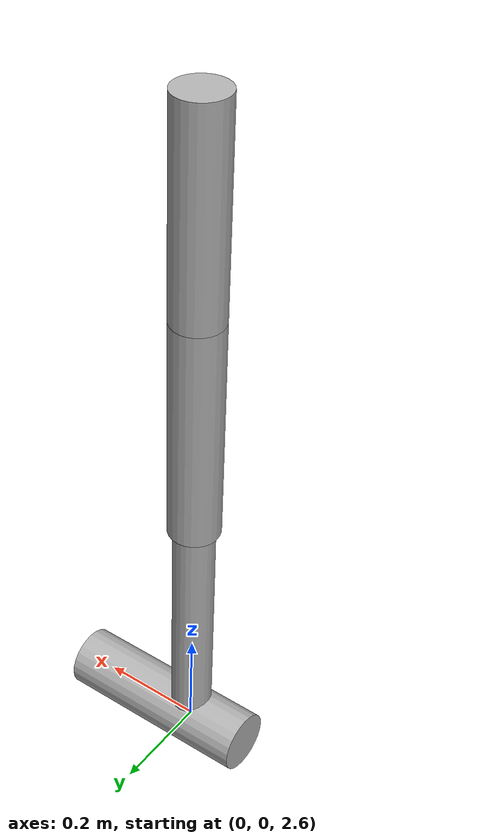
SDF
<?xml version="1.0" ?>
<sdf version="1.8">
  <world name="hopper">
    <physics name="10ms" type="ignored">
      <max_step_size>0.01</max_step_size>
      <real_time_update_rate>0</real_time_update_rate>
    </physics>
    <plugin filename="gz-sim-physics-system"           name="gz::sim::systems::Physics"/>
    <plugin filename="gz-sim-contact-system"           name="gz::sim::systems::Contact"/>
    <plugin filename="gz-sim-sensors-system"           name="gz::sim::systems::Sensors">
      <render_engine>ogre2</render_engine>
    </plugin>
    <plugin filename="gz-sim-scene-broadcaster-system" name="gz::sim::systems::SceneBroadcaster"/>
    <plugin filename="gz-sim-user-commands-system"     name="gz::sim::systems::UserCommands"/>

    <plugin
      filename="gz-sim-python-system-loader-system"
      name="gz::sim::systems::PythonSystemLoader">
      <module_name>hopper_learner</module_name>
      <agent_name>hopper</agent_name>
      <frame_skip>5</frame_skip>
    </plugin>

    <light name="sun" type="directional">
      <cast_shadows>true</cast_shadows>
      <pose>0 0 10 0 0 0</pose>
      <diffuse>0.8 0.8 0.8 1</diffuse>
      <specular>0.2 0.2 0.2 1</specular>
      <direction>-0.5 0.1 -0.9</direction>
    </light>

    <model name="ground_plane">
      <static>true</static>
      <link name="link">
        <collision name="collision">
          <geometry><plane><normal>0 0 1</normal><size>100 100</size></plane></geometry>
        </collision>
        <visual name="visual">
          <geometry><plane><normal>0 0 1</normal><size>100 100</size></plane></geometry>
          <material>
            <ambient>0.8 0.8 0.8 1</ambient>
            <diffuse>0.8 0.8 0.8 1</diffuse>
            <specular>0.8 0.8 0.8 1</specular>
          </material>
        </visual>
      </link>
    </model>

    <model name="hopper">
      <pose>0 0 1.25 0 0 0</pose>
      <include merge="true">
        <uri>package://gazebo_gymnasium_resources/models/hopper</uri>
      </include>
    </model>
  </world>
</sdf>

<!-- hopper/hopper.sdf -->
<sdf version='1.11'>
  <model name='hopper'>
    <link name='link1_1'>
      <inertial>
        <pose>0 0 0 0 0 0</pose>
        <mass>1.9999999999999999e-06</mass>
        <inertia>
          <ixx>2.0000000000000001e-09</ixx>
          <ixy>0</ixy>
          <ixz>0</ixz>
          <iyy>2.0000000000000001e-09</iyy>
          <iyz>0</iyz>
          <izz>2.0000000000000001e-09</izz>
        </inertia>
      </inertial>
    </link>
    <joint name='rootx' type='prismatic'>
      <pose relative_to='link1_1'>0 0 0 0 0 0</pose>
      <parent>link1_1</parent>
      <child>link1_2</child>
      <axis>
        <xyz>1 0 0</xyz>
        <limit>
          <lower>0</lower>
          <upper>1</upper>
          <effort>0</effort>
          <velocity>0</velocity>
        </limit>
        <dynamics>
          <damping>1</damping>
          <friction>0.0001</friction>
          <spring_reference>0</spring_reference>
          <spring_stiffness>0</spring_stiffness>
        </dynamics>
      </axis>
    </joint>
    <link name='link1_2'>
      <pose relative_to='rootx'>0 0 0 0 0 0</pose>
      <inertial>
        <pose>0 0 0 0 0 0</pose>
        <mass>9.9999999999999995e-07</mass>
        <inertia>
          <ixx>1.0000000000000001e-09</ixx>
          <ixy>0</ixy>
          <ixz>0</ixz>
          <iyy>1.0000000000000001e-09</iyy>
          <iyz>0</iyz>
          <izz>1.0000000000000001e-09</izz>
        </inertia>
      </inertial>
    </link>
    <joint name='rootz' type='prismatic'>
      <pose relative_to='link1_2'>0 0 0 0 0 0</pose>
      <parent>link1_2</parent>
      <child>link1_3</child>
      <axis>
        <xyz>0 0 1</xyz>
        <limit>
          <lower>0</lower>
          <upper>1</upper>
          <effort>0</effort>
          <velocity>0</velocity>
        </limit>
        <dynamics>
          <damping>1</damping>
          <friction>0.0001</friction>
          <spring_reference>0</spring_reference>
          <spring_stiffness>0</spring_stiffness>
        </dynamics>
      </axis>
    </joint>
    <link name='link1_3'>
      <pose relative_to='rootz'>0 0 0 0 0 0</pose>
      <inertial>
        <pose>0 0 0 0 0 0</pose>
        <mass>9.9999999999999995e-07</mass>
        <inertia>
          <ixx>1.0000000000000001e-09</ixx>
          <ixy>0</ixy>
          <ixz>0</ixz>
          <iyy>1.0000000000000001e-09</iyy>
          <iyz>0</iyz>
          <izz>1.0000000000000001e-09</izz>
        </inertia>
      </inertial>
    </link>
    <joint name='rooty' type='revolute'>
      <pose relative_to='link1_3'>0 0 1.25 0 0 0</pose>
      <parent>link1_3</parent>
      <child>link1_4</child>
      <axis>
        <xyz>0 1 0</xyz>
        <limit>
          <lower>-inf</lower>
          <upper>inf</upper>
        </limit>
        <dynamics>
          <damping>1</damping>
          <friction>0.0001</friction>
          <spring_reference>0</spring_reference>
          <spring_stiffness>0</spring_stiffness>
        </dynamics>
      </axis>
    </joint>
    <link name='link1_4'>
      <pose relative_to='rooty'>0 0 0 0 0 0</pose>
      <inertial>
        <pose>0 0 1.2499996589536531 0 0 0</pose>
        <mass>3.6651910000000001</mass>
        <inertia>
          <ixx>0.079411563499575344</ixx>
          <ixy>0</ixy>
          <ixz>0</ixz>
          <iyy>0.079411563499575344</iyy>
          <iyz>0</iyz>
          <izz>0.0061100010000000003</izz>
        </inertia>
      </inertial>
      <collision name='link1_4_fixed_joint_lump__torso_collision'>
        <pose>0 0 1.25 0 0 0</pose>
        <geometry>
          <cylinder>
            <length>0.40000000000000002</length>
            <radius>0.050000000000000003</radius>
          </cylinder>
        </geometry>
      </collision>
      <visual name='link1_4_fixed_joint_lump__torso_visual'>
        <pose>0 0 1.25 0 0 0</pose>
        <geometry>
          <cylinder>
            <length>0.40000000000000002</length>
            <radius>0.050000000000000003</radius>
          </cylinder>
        </geometry>
              <material>
          <ambient>0.5 0.5 0.5 1</ambient>
          <diffuse>0.7 0.7 0.7 1</diffuse>
          <specular>0.1 0.1 0.1 1</specular>
        </material>
      </visual>
    </link>
    <joint name='thigh_joint' type='revolute'>
      <pose relative_to='link1_4'>0 0 1.05 0 0 0</pose>
      <parent>link1_4</parent>
      <child>link1_6</child>
      <axis>
        <xyz>0 -1 0</xyz>
        <limit>
          <lower>-2.6179899999999998</lower>
          <upper>0</upper>
          <effort>0</effort>
          <velocity>0</velocity>
        </limit>
        <dynamics>
          <damping>1</damping>
          <friction>0.0001</friction>
          <spring_reference>0</spring_reference>
          <spring_stiffness>0</spring_stiffness>
        </dynamics>
      </axis>
    </joint>
    <link name='link1_6'>
      <pose relative_to='thigh_joint'>0 0 0 0 0 0</pose>
      <inertial>
        <pose>0 0 0 0 0 0</pose>
        <mass>4.0578910000000006</mass>
        <inertia>
          <ixx>0.105670001</ixx>
          <ixy>0</ixy>
          <ixz>0</ixz>
          <iyy>0.105670001</iyy>
          <iyz>0</iyz>
          <izz>0.0067600010000000007</izz>
        </inertia>
      </inertial>
      <collision name='link1_6_fixed_joint_lump__thigh_collision'>
        <pose>0 0 -0.22500000000000001 0 0 0</pose>
        <geometry>
          <cylinder>
            <length>0.45000000000000001</length>
            <radius>0.050000000000000003</radius>
          </cylinder>
        </geometry>
      </collision>
      <visual name='link1_6_fixed_joint_lump__thigh_visual'>
        <pose>0 0 -0.22500000000000001 0 0 0</pose>
        <geometry>
          <cylinder>
            <length>0.45000000000000001</length>
            <radius>0.050000000000000003</radius>
          </cylinder>
        </geometry>
              <material>
          <ambient>0.5 0.5 0.5 1</ambient>
          <diffuse>0.7 0.7 0.7 1</diffuse>
          <specular>0.1 0.1 0.1 1</specular>
        </material>
      </visual>
    </link>
    <joint name='leg_joint' type='revolute'>
      <pose relative_to='link1_6'>0 0 -0.45000000000000001 0 0 0</pose>
      <parent>link1_6</parent>
      <child>link1_8</child>
      <axis>
        <xyz>0 -1 0</xyz>
        <limit>
          <lower>-2.6179899999999998</lower>
          <upper>0</upper>
          <effort>0</effort>
          <velocity>0</velocity>
        </limit>
        <dynamics>
          <damping>1</damping>
          <friction>0.0001</friction>
          <spring_reference>0</spring_reference>
          <spring_stiffness>0</spring_stiffness>
        </dynamics>
      </axis>
    </joint>
    <link name='link1_8'>
      <pose relative_to='leg_joint'>0 0 0 0 0 0</pose>
      <inertial>
        <pose>0 0 -0.2499999101159468 0 0 0</pose>
        <mass>2.781361</mass>
        <inertia>
          <ixx>0.079450063499977547</ixx>
          <ixy>0</ixy>
          <ixz>0</ixz>
          <iyy>0.079450063499977547</iyy>
          <iyz>0</iyz>
          <izz>0.0029700009999999999</izz>
        </inertia>
      </inertial>
      <collision name='link1_8_fixed_joint_lump__leg_collision'>
        <pose>0 0 -0.25 0 0 0</pose>
        <geometry>
          <cylinder>
            <length>0.5</length>
            <radius>0.040000000000000001</radius>
          </cylinder>
        </geometry>
      </collision>
      <visual name='link1_8_fixed_joint_lump__leg_visual'>
        <pose>0 0 -0.25 0 0 0</pose>
        <geometry>
          <cylinder>
            <length>0.5</length>
            <radius>0.040000000000000001</radius>
          </cylinder>
        </geometry>
              <material>
          <ambient>0.5 0.5 0.5 1</ambient>
          <diffuse>0.7 0.7 0.7 1</diffuse>
          <specular>0.1 0.1 0.1 1</specular>
        </material>
      </visual>
    </link>
    <joint name='foot_joint' type='revolute'>
      <pose relative_to='link1_8'>0 0 -0.5 0 0 0</pose>
      <parent>link1_8</parent>
      <child>link1_10</child>
      <axis>
        <xyz>0 -1 0</xyz>
        <limit>
          <lower>-0.78539999999999999</lower>
          <upper>0.78539999999999999</upper>
          <effort>0</effort>
          <velocity>0</velocity>
        </limit>
        <dynamics>
          <damping>1</damping>
          <friction>0.0001</friction>
          <spring_reference>0</spring_reference>
          <spring_stiffness>0</spring_stiffness>
        </dynamics>
      </axis>
    </joint>
    <link name='link1_10'>
      <pose relative_to='foot_joint'>0 0 0 0 0 0</pose>
      <inertial>
        <pose>0.12999997554354931 0 -0.099999981187345641 0 0 0</pose>
        <mass>5.3155710000000003</mass>
        <inertia>
          <ixx>0.01276001099999813</ixx>
          <ixy>0</ixy>
          <ixz>1.299999753678893e-08</ixz>
          <iyy>0.121590027899995</iyy>
          <iyz>0</iyz>
          <izz>0.12159001789999679</izz>
        </inertia>
      </inertial>
      <collision name='link1_10_fixed_joint_lump__foot_collision'>
        <pose>0.065000000000000002 0 0 0 -1.5707963267948966 0</pose>
        <geometry>
          <cylinder>
            <length>0.39000000000000001</length>
            <radius>0.059999999999999998</radius>
          </cylinder>
        </geometry>
      </collision>
      <visual name='link1_10_fixed_joint_lump__foot_visual'>
        <pose>0.065000000000000002 0 0 0 -1.5707963267948966 0</pose>
        <geometry>
          <cylinder>
            <length>0.39000000000000001</length>
            <radius>0.059999999999999998</radius>
          </cylinder>
        </geometry>
              <material>
          <ambient>0.5 0.5 0.5 1</ambient>
          <diffuse>0.7 0.7 0.7 1</diffuse>
          <specular>0.1 0.1 0.1 1</specular>
        </material>
      </visual>
    </link>

</model>
</sdf>
